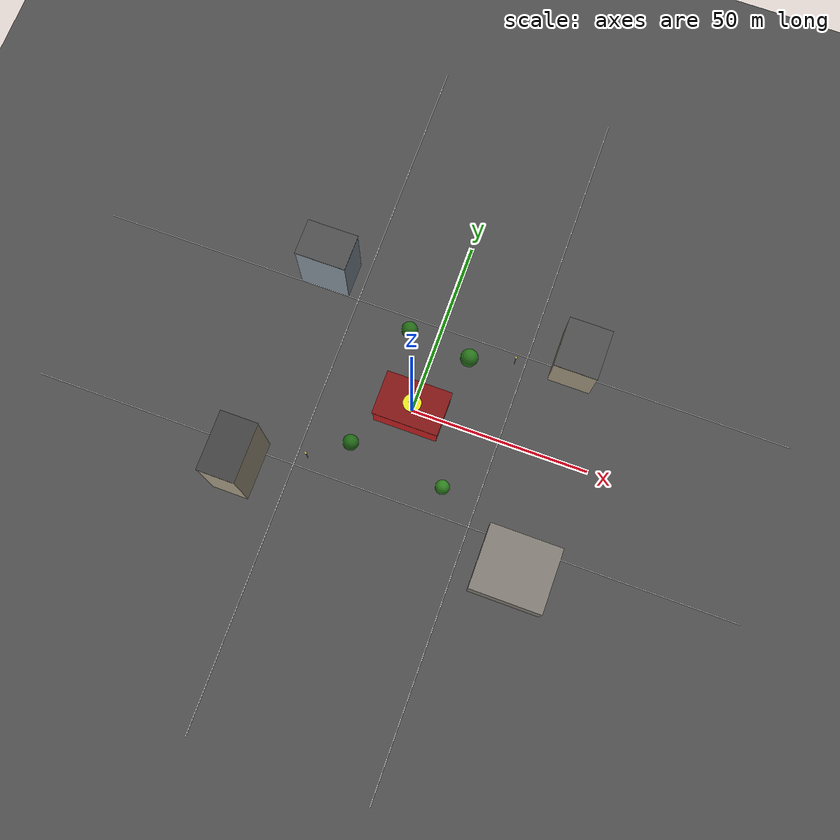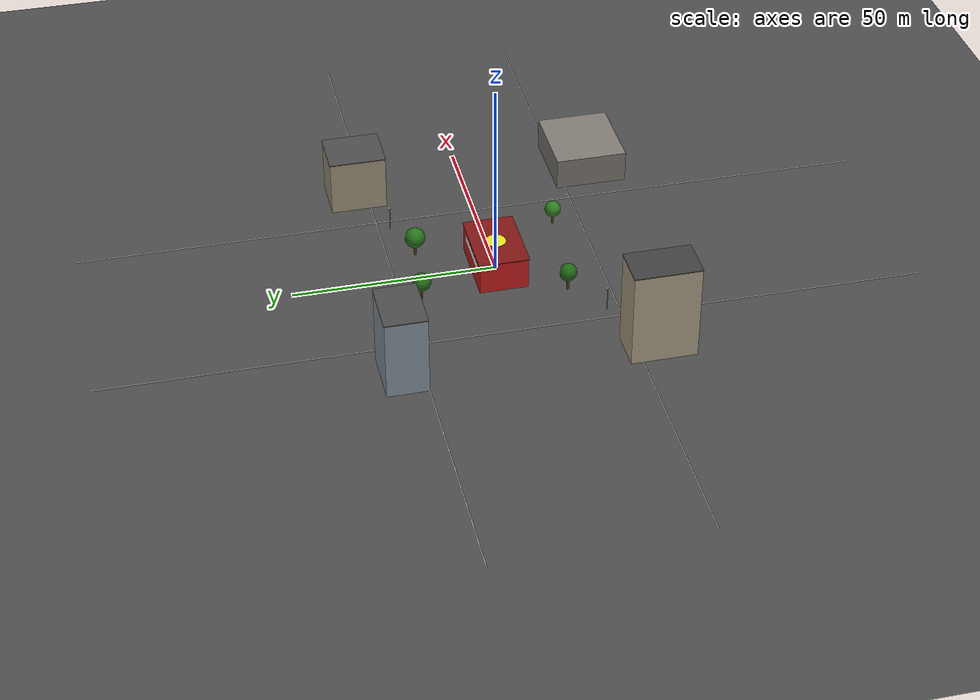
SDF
<sdf version="1.9">
 <world name="cvs_delivery">
  <physics name="1ms" type="dart">
   <max_step_size>0.001</max_step_size>
   <real_time_factor>1.0</real_time_factor>
  </physics>
  <plugin filename="gz-sim-physics-system" name="gz::sim::systems::Physics"/>
  <plugin filename="gz-sim-user-commands-system" name="gz::sim::systems::UserCommands"/>
  <plugin filename="gz-sim-scene-broadcaster-system" name="gz::sim::systems::SceneBroadcaster"/>
  <plugin filename="gz-sim-sensors-system" name="gz::sim::systems::Sensors">
   <render_engine>ogre2</render_engine>
  </plugin>
  <plugin filename="gz-sim-imu-system" name="gz::sim::systems::Imu"/>
  <plugin filename="gz-sim-air-pressure-system" name="gz::sim::systems::AirPressure"/>
  <plugin filename="gz-sim-magnetometer-system" name="gz::sim::systems::Magnetometer"/>
  <plugin filename="gz-sim-wind-effects-system" name="gz::sim::systems::WindEffects">
   <horizontal>
    <mean>0</mean>
    <stddev>0.1</stddev>
    <bias_mean>0.0</bias_mean>
    <bias_stddev>0.0</bias_stddev>
   </horizontal>
   <vertical>
    <mean>0</mean>
    <stddev>0.0</stddev>
    <bias_mean>0.0</bias_mean>
    <bias_stddev>0.0</bias_stddev>
   </vertical>
  </plugin>
  <light type="directional" name="sun">
   <pose>0 0 500 0.1 0 -0.5</pose>
   <diffuse>1.0 0.95 0.85 1</diffuse>
   <specular>0.4 0.4 0.4 1</specular>
   <direction>-0.5 0.1 -0.9</direction>
  </light>
  <scene>
   <sky><clouds><speed>12</speed></clouds></sky>
   <ambient>0.6 0.65 0.7 1</ambient>
   <background>0.53 0.71 0.87 1</background>
   <shadows>true</shadows>
   <grid>false</grid>
  </scene>
  <model name="ground">
   <static>true</static>
   <link name="link">
    <collision name="col">
     <geometry><plane><normal>0 0 1</normal><size>200 200</size></plane></geometry>
    </collision>
    <visual name="vis">
     <geometry><plane><normal>0 0 1</normal><size>200 200</size></plane></geometry>
     <material>
      <ambient>0.28 0.28 0.28 1</ambient>
      <diffuse>0.30 0.30 0.30 1</diffuse>
      <specular>0.05 0.05 0.05 1</specular>
     </material>
    </visual>
   </link>
  </model>
  <model name="road_h1">
   <static>true</static>
   <pose>0 25 0.01 0 0 0</pose>
   <link name="link">
    <visual name="vis">
     <geometry><box><size>200 0.2 0.01</size></box></geometry>
     <material><ambient>0.9 0.9 0.9 1</ambient><diffuse>0.9 0.9 0.9 1</diffuse></material>
    </visual>
   </link>
  </model>
  <model name="road_h2">
   <static>true</static>
   <pose>0 -25 0.01 0 0 0</pose>
   <link name="link">
    <visual name="vis">
     <geometry><box><size>200 0.2 0.01</size></box></geometry>
     <material><ambient>0.9 0.9 0.9 1</ambient><diffuse>0.9 0.9 0.9 1</diffuse></material>
    </visual>
   </link>
  </model>
  <model name="road_v1">
   <static>true</static>
   <pose>25 0 0.01 0 0 0</pose>
   <link name="link">
    <visual name="vis">
     <geometry><box><size>0.2 200 0.01</size></box></geometry>
     <material><ambient>0.9 0.9 0.9 1</ambient><diffuse>0.9 0.9 0.9 1</diffuse></material>
    </visual>
   </link>
  </model>
  <model name="road_v2">
   <static>true</static>
   <pose>-25 0 0.01 0 0 0</pose>
   <link name="link">
    <visual name="vis">
     <geometry><box><size>0.2 200 0.01</size></box></geometry>
     <material><ambient>0.9 0.9 0.9 1</ambient><diffuse>0.9 0.9 0.9 1</diffuse></material>
    </visual>
   </link>
  </model>
  <model name="cvs_pharmacy">
   <static>true</static>
   <pose>0 0 4 0 0 0</pose>
   <link name="link">
    <collision name="col"><geometry><box><size>18 12 8</size></box></geometry></collision>
    <visual name="walls">
     <geometry><box><size>18 12 8</size></box></geometry>
     <material>
      <ambient>0.75 0.10 0.10 1</ambient>
      <diffuse>0.80 0.12 0.12 1</diffuse>
      <specular>0.1 0.05 0.05 1</specular>
     </material>
    </visual>
    <visual name="sign_band">
     <pose>0 6.01 1.5 0 0 0</pose>
     <geometry><box><size>14 0.05 2</size></box></geometry>
     <material><ambient>1 1 1 1</ambient><diffuse>1 1 1 1</diffuse></material>
    </visual>
    <visual name="roof">
     <pose>0 0 4.1 0 0 0</pose>
     <geometry><box><size>18.5 12.5 0.2</size></box></geometry>
     <material><ambient>0.5 0.08 0.08 1</ambient><diffuse>0.5 0.08 0.08 1</diffuse></material>
    </visual>
    <visual name="landing_pad">
     <pose>0 0 4.25 0 0 0</pose>
     <geometry><cylinder><radius>2.5</radius><length>0.05</length></cylinder></geometry>
     <material><ambient>0.9 0.9 0.1 1</ambient><diffuse>0.9 0.9 0.1 1</diffuse></material>
    </visual>
    <visual name="h_marker">
     <pose>0 0 4.3 0 0 0</pose>
     <geometry><box><size>2.0 0.3 0.01</size></box></geometry>
     <material><ambient>1 1 1 1</ambient><diffuse>1 1 1 1</diffuse></material>
    </visual>
   </link>
  </model>
  <model name="building_a">
   <static>true</static>
   <pose>-35 30 10 0 0 0</pose>
   <link name="link">
    <collision name="col"><geometry><box><size>14 10 20</size></box></geometry></collision>
    <visual name="vis">
     <geometry><box><size>14 10 20</size></box></geometry>
     <material><ambient>0.55 0.60 0.65 1</ambient><diffuse>0.55 0.60 0.65 1</diffuse></material>
    </visual>
    <visual name="roof">
     <pose>0 0 10.1 0 0 0</pose>
     <geometry><box><size>14.2 10.2 0.2</size></box></geometry>
     <material><ambient>0.3 0.3 0.3 1</ambient><diffuse>0.3 0.3 0.3 1</diffuse></material>
    </visual>
   </link>
  </model>
  <model name="building_b">
   <static>true</static>
   <pose>38 28 7 0 0 0</pose>
   <link name="link">
    <collision name="col"><geometry><box><size>12 14 14</size></box></geometry></collision>
    <visual name="vis">
     <geometry><box><size>12 14 14</size></box></geometry>
     <material><ambient>0.65 0.60 0.50 1</ambient><diffuse>0.65 0.60 0.50 1</diffuse></material>
    </visual>
    <visual name="roof">
     <pose>0 0 7.1 0 0 0</pose>
     <geometry><box><size>12.2 14.2 0.2</size></box></geometry>
     <material><ambient>0.3 0.3 0.3 1</ambient><diffuse>0.3 0.3 0.3 1</diffuse></material>
    </visual>
   </link>
  </model>
  <model name="building_c">
   <static>true</static>
   <pose>-38 -30 12 0 0 0</pose>
   <link name="link">
    <collision name="col"><geometry><box><size>10 16 24</size></box></geometry></collision>
    <visual name="vis">
     <geometry><box><size>10 16 24</size></box></geometry>
     <material><ambient>0.70 0.65 0.55 1</ambient><diffuse>0.70 0.65 0.55 1</diffuse></material>
    </visual>
    <visual name="roof">
     <pose>0 0 12.1 0 0 0</pose>
     <geometry><box><size>10.2 16.2 0.2</size></box></geometry>
     <material><ambient>0.25 0.25 0.25 1</ambient><diffuse>0.25 0.25 0.25 1</diffuse></material>
    </visual>
   </link>
  </model>
  <model name="building_d">
   <static>true</static>
   <pose>40 -32 4 0 0 0</pose>
   <link name="link">
    <collision name="col"><geometry><box><size>20 18 8</size></box></geometry></collision>
    <visual name="vis">
     <geometry><box><size>20 18 8</size></box></geometry>
     <material><ambient>0.50 0.48 0.45 1</ambient><diffuse>0.50 0.48 0.45 1</diffuse></material>
    </visual>
   </link>
  </model>
  <model name="tree1">
   <static>true</static>
   <pose>10 18 2 0 0 0</pose>
   <link name="link">
    <visual name="trunk">
     <geometry><cylinder><radius>0.3</radius><length>4</length></cylinder></geometry>
     <material><ambient>0.35 0.22 0.10 1</ambient><diffuse>0.35 0.22 0.10 1</diffuse></material>
    </visual>
    <visual name="top">
     <pose>0 0 3 0 0 0</pose>
     <geometry><sphere><radius>2.5</radius></sphere></geometry>
     <material><ambient>0.15 0.45 0.10 1</ambient><diffuse>0.15 0.45 0.10 1</diffuse></material>
    </visual>
   </link>
  </model>
  <model name="tree2">
   <static>true</static>
   <pose>-12 -15 2 0 0 0</pose>
   <link name="link">
    <visual name="trunk">
     <geometry><cylinder><radius>0.3</radius><length>4</length></cylinder></geometry>
     <material><ambient>0.35 0.22 0.10 1</ambient><diffuse>0.35 0.22 0.10 1</diffuse></material>
    </visual>
    <visual name="top">
     <pose>0 0 3 0 0 0</pose>
     <geometry><sphere><radius>2.2</radius></sphere></geometry>
     <material><ambient>0.12 0.40 0.08 1</ambient><diffuse>0.12 0.40 0.08 1</diffuse></material>
    </visual>
   </link>
  </model>
  <model name="tree3">
   <static>true</static>
   <pose>15 -18 2 0 0 0</pose>
   <link name="link">
    <visual name="trunk">
     <geometry><cylinder><radius>0.25</radius><length>3.5</length></cylinder></geometry>
     <material><ambient>0.35 0.22 0.10 1</ambient><diffuse>0.35 0.22 0.10 1</diffuse></material>
    </visual>
    <visual name="top">
     <pose>0 0 2.5 0 0 0</pose>
     <geometry><sphere><radius>2.0</radius></sphere></geometry>
     <material><ambient>0.18 0.50 0.12 1</ambient><diffuse>0.18 0.50 0.12 1</diffuse></material>
    </visual>
   </link>
  </model>
  <model name="tree4">
   <static>true</static>
   <pose>-8 20 2 0 0 0</pose>
   <link name="link">
    <visual name="trunk">
     <geometry><cylinder><radius>0.3</radius><length>4</length></cylinder></geometry>
     <material><ambient>0.35 0.22 0.10 1</ambient><diffuse>0.35 0.22 0.10 1</diffuse></material>
    </visual>
    <visual name="top">
     <pose>0 0 3 0 0 0</pose>
     <geometry><sphere><radius>2.3</radius></sphere></geometry>
     <material><ambient>0.14 0.42 0.09 1</ambient><diffuse>0.14 0.42 0.09 1</diffuse></material>
    </visual>
   </link>
  </model>
  <model name="lamp1">
   <static>true</static>
   <pose>22 22 3 0 0 0</pose>
   <link name="link">
    <visual name="pole">
     <geometry><cylinder><radius>0.08</radius><length>6</length></cylinder></geometry>
     <material><ambient>0.4 0.4 0.4 1</ambient><diffuse>0.4 0.4 0.4 1</diffuse></material>
    </visual>
    <visual name="head">
     <pose>0 0 3.2 0 0 0</pose>
     <geometry><box><size>0.5 0.5 0.2</size></box></geometry>
     <material><ambient>0.9 0.8 0.3 1</ambient><diffuse>0.9 0.8 0.3 1</diffuse></material>
    </visual>
   </link>
  </model>
  <model name="lamp2">
   <static>true</static>
   <pose>-22 -22 3 0 0 0</pose>
   <link name="link">
    <visual name="pole">
     <geometry><cylinder><radius>0.08</radius><length>6</length></cylinder></geometry>
     <material><ambient>0.4 0.4 0.4 1</ambient><diffuse>0.4 0.4 0.4 1</diffuse></material>
    </visual>
    <visual name="head">
     <pose>0 0 3.2 0 0 0</pose>
     <geometry><box><size>0.5 0.5 0.2</size></box></geometry>
     <material><ambient>0.9 0.8 0.3 1</ambient><diffuse>0.9 0.8 0.3 1</diffuse></material>
    </visual>
   </link>
  </model>
  <model name="delivery_package">
   <static>false</static>
   <pose>0 0 0.15 0 0 0</pose>
   <link name="link">
    <inertial><mass>0.5</mass><inertia><ixx>0.001</ixx><iyy>0.001</iyy><izz>0.001</izz></inertia></inertial>
    <collision name="col"><geometry><box><size>0.3 0.3 0.3</size></box></geometry></collision>
    <visual name="vis">
     <geometry><box><size>0.3 0.3 0.3</size></box></geometry>
     <material><ambient>0.8 0.7 0.2 1</ambient><diffuse>0.8 0.7 0.2 1</diffuse></material>
    </visual>
   </link>
  </model>
 </world>
</sdf>
